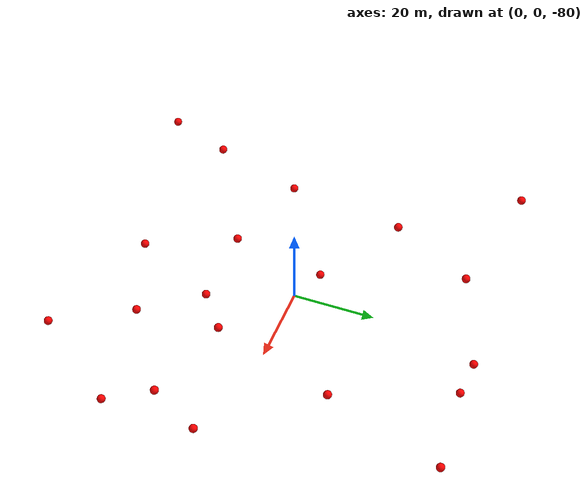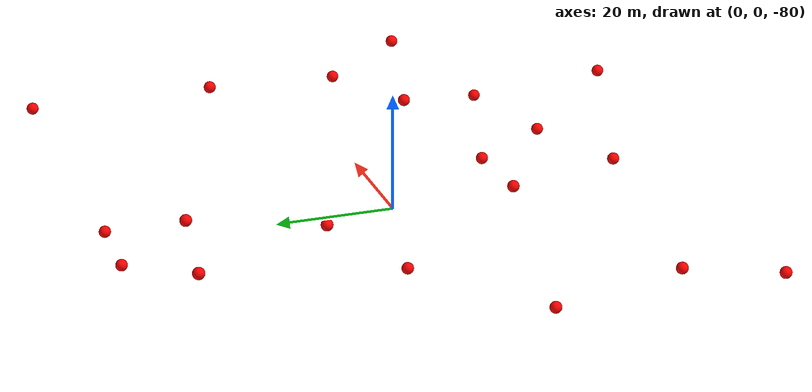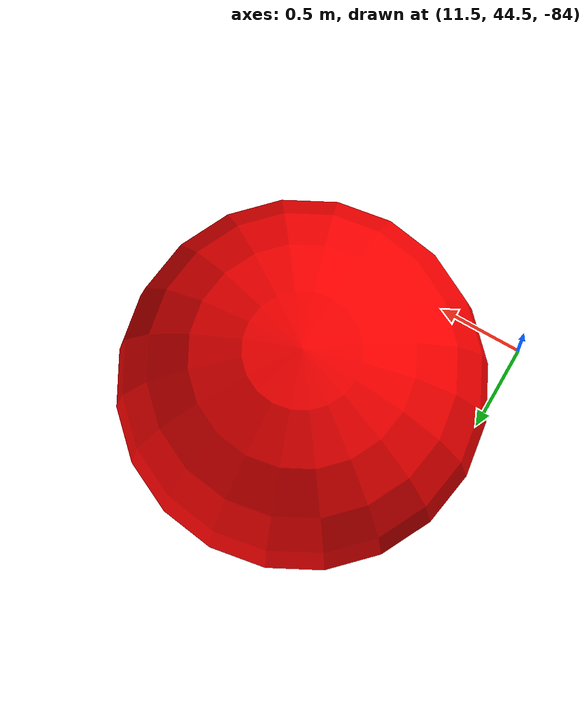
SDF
<sdf version="1.6">
 <world name="empty_environment">
  <scene><ambient>0.1 0.2 0.3 1.0</ambient><background>0.0 0.1 0.3</background></scene>
  <physics name="1ms" type="ode">
   <max_step_size>0.001</max_step_size>
   <real_time_factor>1.0</real_time_factor>
  </physics>
  <light type="directional" name="sun">
   <pose>0 0 10 0 0 0</pose>
   <diffuse>1 1 1 1</diffuse>
   <specular>0.5 0.5 0.5 1</specular>
   <attenuation>
    <range>1000</range>
    <constant>0.9</constant>
    <linear>0.01</linear>
    <quadratic>0.001</quadratic>
   </attenuation>
   <direction>-0.5 0.1 -0.9</direction>
  </light>
  <plugin filename="gz-sim-physics-system" name="gz::sim::systems::Physics"/>
  <plugin filename="gz-sim-sensors-system" name="gz::sim::systems::Sensors">
   <render_engine>ogre2</render_engine>
  </plugin>
  <plugin filename="gz-sim-buoyancy-system" name="gz::sim::systems::Buoyancy">
   <graded_buoyancy>
    <default_density>1025</default_density>
    <density_change><above_depth>0</above_depth><density>1.125</density></density_change>
   </graded_buoyancy>
  </plugin>
  <plugin filename="gz-sim-user-commands-system" name="gz::sim::systems::UserCommands"/>
  <plugin filename="gz-sim-scene-broadcaster-system" name="gz::sim::systems::SceneBroadcaster"/>
  <plugin filename="gz-sim-contact-system" name="gz::sim::systems::Contact"/>
  <model name="target_marker_0">
   <static>true</static>
   <pose>9.24 -18.82 -77.34 0 0 0</pose>
   <link name="link">
    <visual name="visual">
     <geometry><sphere><radius>1.0</radius></sphere></geometry>
     <material>
      <ambient>1.0 0.0 0.0 1.0</ambient>
      <diffuse>1.0 0.0 0.0 1.0</diffuse>
      <emissive>0.8 0.0 0.0 1.0</emissive>
     </material>
    </visual>
   </link>
  </model>
  <model name="target_marker_1">
   <static>true</static>
   <pose>48.74 -5.41 -76.04 0 0 0</pose>
   <link name="link">
    <visual name="visual">
     <geometry><sphere><radius>1.0</radius></sphere></geometry>
     <material>
      <ambient>1.0 0.0 0.0 1.0</ambient>
      <diffuse>1.0 0.0 0.0 1.0</diffuse>
      <emissive>0.8 0.0 0.0 1.0</emissive>
     </material>
    </visual>
   </link>
  </model>
  <model name="target_marker_2">
   <static>true</static>
   <pose>44.49 -30.17 -81.20 0 0 0</pose>
   <link name="link">
    <visual name="visual">
     <geometry><sphere><radius>1.0</radius></sphere></geometry>
     <material>
      <ambient>1.0 0.0 0.0 1.0</ambient>
      <diffuse>1.0 0.0 0.0 1.0</diffuse>
      <emissive>0.8 0.0 0.0 1.0</emissive>
     </material>
    </visual>
   </link>
  </model>
  <model name="target_marker_3">
   <static>true</static>
   <pose>1.78 45.56 -84.16 0 0 0</pose>
   <link name="link">
    <visual name="visual">
     <geometry><sphere><radius>1.0</radius></sphere></geometry>
     <material>
      <ambient>1.0 0.0 0.0 1.0</ambient>
      <diffuse>1.0 0.0 0.0 1.0</diffuse>
      <emissive>0.8 0.0 0.0 1.0</emissive>
     </material>
    </visual>
   </link>
  </model>
  <model name="target_marker_4">
   <static>true</static>
   <pose>-45.75 -49.68 -78.82 0 0 0</pose>
   <link name="link">
    <visual name="visual">
     <geometry><sphere><radius>1.0</radius></sphere></geometry>
     <material>
      <ambient>1.0 0.0 0.0 1.0</ambient>
      <diffuse>1.0 0.0 0.0 1.0</diffuse>
      <emissive>0.8 0.0 0.0 1.0</emissive>
     </material>
    </visual>
   </link>
  </model>
  <model name="target_marker_5">
   <static>true</static>
   <pose>-39.76 -34.55 -78.42 0 0 0</pose>
   <link name="link">
    <visual name="visual">
     <geometry><sphere><radius>1.0</radius></sphere></geometry>
     <material>
      <ambient>1.0 0.0 0.0 1.0</ambient>
      <diffuse>1.0 0.0 0.0 1.0</diffuse>
      <emissive>0.8 0.0 0.0 1.0</emissive>
     </material>
    </visual>
   </link>
  </model>
  <model name="target_marker_6">
   <static>true</static>
   <pose>-21.98 18.35 -70.88 0 0 0</pose>
   <link name="link">
    <visual name="visual">
     <geometry><sphere><radius>1.0</radius></sphere></geometry>
     <material>
      <ambient>1.0 0.0 0.0 1.0</ambient>
      <diffuse>1.0 0.0 0.0 1.0</diffuse>
      <emissive>0.8 0.0 0.0 1.0</emissive>
     </material>
    </visual>
   </link>
  </model>
  <model name="target_marker_7">
   <static>true</static>
   <pose>-12.97 1.89 -84.77 0 0 0</pose>
   <link name="link">
    <visual name="visual">
     <geometry><sphere><radius>1.0</radius></sphere></geometry>
     <material>
      <ambient>1.0 0.0 0.0 1.0</ambient>
      <diffuse>1.0 0.0 0.0 1.0</diffuse>
      <emissive>0.8 0.0 0.0 1.0</emissive>
     </material>
    </visual>
   </link>
  </model>
  <model name="target_marker_8">
   <static>true</static>
   <pose>-0.06 -38.65 -76.38 0 0 0</pose>
   <link name="link">
    <visual name="visual">
     <geometry><sphere><radius>1.0</radius></sphere></geometry>
     <material>
      <ambient>1.0 0.0 0.0 1.0</ambient>
      <diffuse>1.0 0.0 0.0 1.0</diffuse>
      <emissive>0.8 0.0 0.0 1.0</emissive>
     </material>
    </visual>
   </link>
  </model>
  <model name="target_marker_9">
   <static>true</static>
   <pose>46.36 -15.48 -69.80 0 0 0</pose>
   <link name="link">
    <visual name="visual">
     <geometry><sphere><radius>1.0</radius></sphere></geometry>
     <material>
      <ambient>1.0 0.0 0.0 1.0</ambient>
      <diffuse>1.0 0.0 0.0 1.0</diffuse>
      <emissive>0.8 0.0 0.0 1.0</emissive>
     </material>
    </visual>
   </link>
  </model>
  <model name="target_marker_10">
   <static>true</static>
   <pose>-38.56 43.97 -68.11 0 0 0</pose>
   <link name="link">
    <visual name="visual">
     <geometry><sphere><radius>1.0</radius></sphere></geometry>
     <material>
      <ambient>1.0 0.0 0.0 1.0</ambient>
      <diffuse>1.0 0.0 0.0 1.0</diffuse>
      <emissive>0.8 0.0 0.0 1.0</emissive>
     </material>
    </visual>
   </link>
  </model>
  <model name="target_marker_11">
   <static>true</static>
   <pose>-37.48 -14.23 -83.15 0 0 0</pose>
   <link name="link">
    <visual name="visual">
     <geometry><sphere><radius>1.0</radius></sphere></geometry>
     <material>
      <ambient>1.0 0.0 0.0 1.0</ambient>
      <diffuse>1.0 0.0 0.0 1.0</diffuse>
      <emissive>0.8 0.0 0.0 1.0</emissive>
     </material>
    </visual>
   </link>
  </model>
  <model name="target_marker_12">
   <static>true</static>
   <pose>32.53 -48.65 -74.36 0 0 0</pose>
   <link name="link">
    <visual name="visual">
     <geometry><sphere><radius>1.0</radius></sphere></geometry>
     <material>
      <ambient>1.0 0.0 0.0 1.0</ambient>
      <diffuse>1.0 0.0 0.0 1.0</diffuse>
      <emissive>0.8 0.0 0.0 1.0</emissive>
     </material>
    </visual>
   </link>
  </model>
  <model name="target_marker_13">
   <static>true</static>
   <pose>-12.04 38.49 -71.43 0 0 0</pose>
   <link name="link">
    <visual name="visual">
     <geometry><sphere><radius>1.0</radius></sphere></geometry>
     <material>
      <ambient>1.0 0.0 0.0 1.0</ambient>
      <diffuse>1.0 0.0 0.0 1.0</diffuse>
      <emissive>0.8 0.0 0.0 1.0</emissive>
     </material>
    </visual>
   </link>
  </model>
  <model name="target_marker_14">
   <static>true</static>
   <pose>42.38 49.76 -72.25 0 0 0</pose>
   <link name="link">
    <visual name="visual">
     <geometry><sphere><radius>1.0</radius></sphere></geometry>
     <material>
      <ambient>1.0 0.0 0.0 1.0</ambient>
      <diffuse>1.0 0.0 0.0 1.0</diffuse>
      <emissive>0.8 0.0 0.0 1.0</emissive>
     </material>
    </visual>
   </link>
  </model>
  <model name="target_marker_15">
   <static>true</static>
   <pose>-8.41 -17.83 -75.01 0 0 0</pose>
   <link name="link">
    <visual name="visual">
     <geometry><sphere><radius>1.0</radius></sphere></geometry>
     <material>
      <ambient>1.0 0.0 0.0 1.0</ambient>
      <diffuse>1.0 0.0 0.0 1.0</diffuse>
      <emissive>0.8 0.0 0.0 1.0</emissive>
     </material>
    </visual>
   </link>
  </model>
  <model name="target_marker_16">
   <static>true</static>
   <pose>34.49 20.93 -69.10 0 0 0</pose>
   <link name="link">
    <visual name="visual">
     <geometry><sphere><radius>1.0</radius></sphere></geometry>
     <material>
      <ambient>1.0 0.0 0.0 1.0</ambient>
      <diffuse>1.0 0.0 0.0 1.0</diffuse>
      <emissive>0.8 0.0 0.0 1.0</emissive>
     </material>
    </visual>
   </link>
  </model>
  <model name="target_marker_17">
   <static>true</static>
   <pose>23.11 -9.81 -71.09 0 0 0</pose>
   <link name="link">
    <visual name="visual">
     <geometry><sphere><radius>1.0</radius></sphere></geometry>
     <material>
      <ambient>1.0 0.0 0.0 1.0</ambient>
      <diffuse>1.0 0.0 0.0 1.0</diffuse>
      <emissive>0.8 0.0 0.0 1.0</emissive>
     </material>
    </visual>
   </link>
  </model>
  <model name="target_marker_18">
   <static>true</static>
   <pose>12.37 45.48 -82.81 0 0 0</pose>
   <link name="link">
    <visual name="visual">
     <geometry><sphere><radius>1.0</radius></sphere></geometry>
     <material>
      <ambient>1.0 0.0 0.0 1.0</ambient>
      <diffuse>1.0 0.0 0.0 1.0</diffuse>
      <emissive>0.8 0.0 0.0 1.0</emissive>
     </material>
    </visual>
   </link>
  </model>
  <model name="target_marker_19">
   <static>true</static>
   <pose>19.18 -32.43 -77.85 0 0 0</pose>
   <link name="link">
    <visual name="visual">
     <geometry><sphere><radius>1.0</radius></sphere></geometry>
     <material>
      <ambient>1.0 0.0 0.0 1.0</ambient>
      <diffuse>1.0 0.0 0.0 1.0</diffuse>
      <emissive>0.8 0.0 0.0 1.0</emissive>
     </material>
    </visual>
   </link>
  </model>
  <model name="sea_floor_collision">
   <static>true</static>
   <pose>0 0 -105 0 0 0</pose>
   <link name="link">
    <collision name="collision"><geometry><box><size>2000 2000 1</size></box></geometry></collision>
   </link>
  </model>
 </world>
</sdf>
